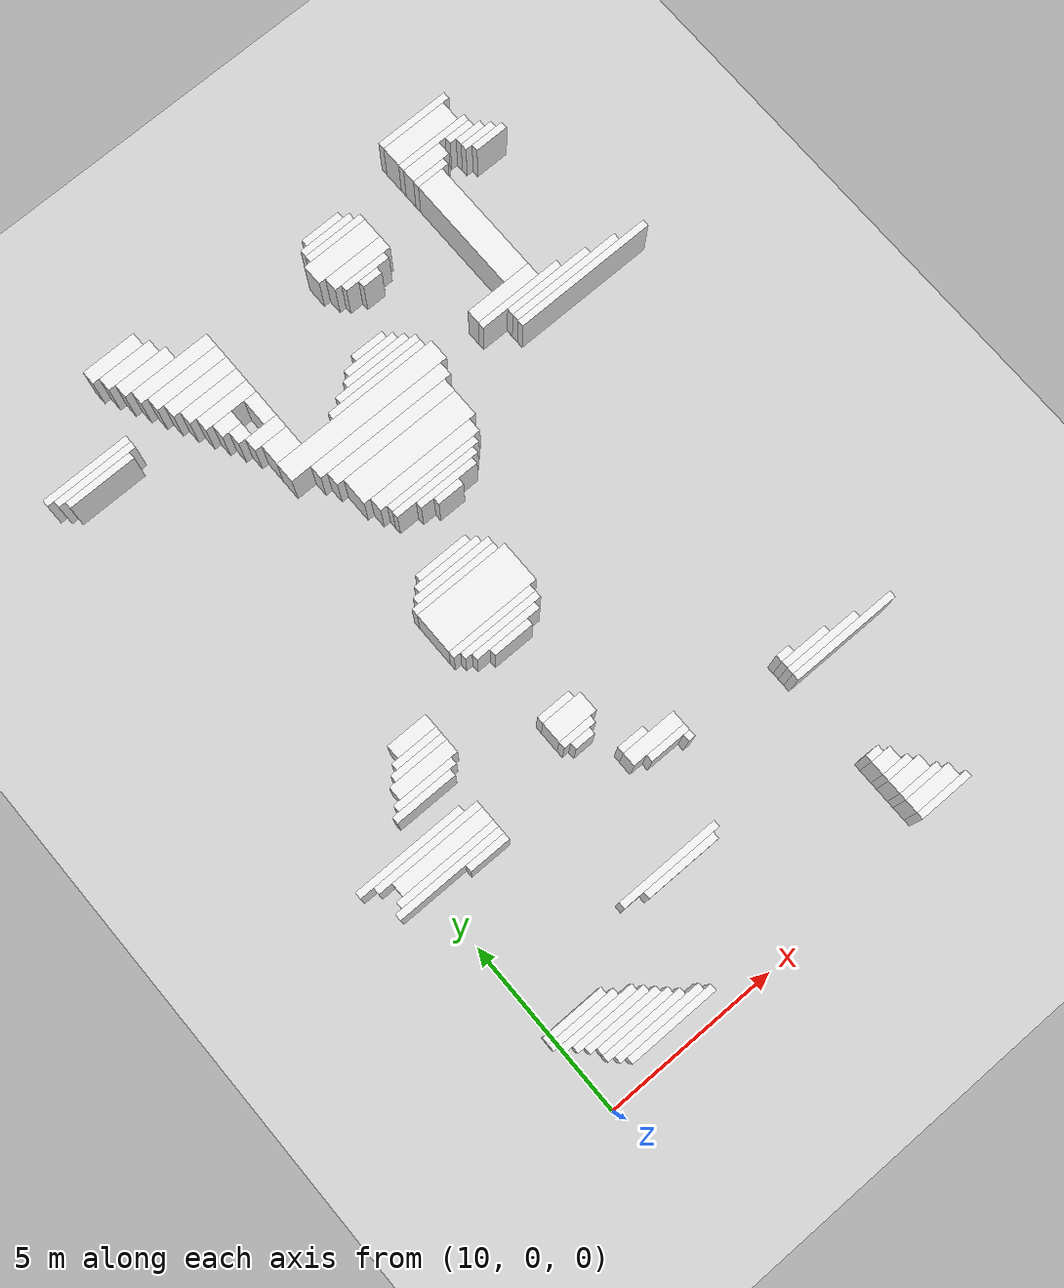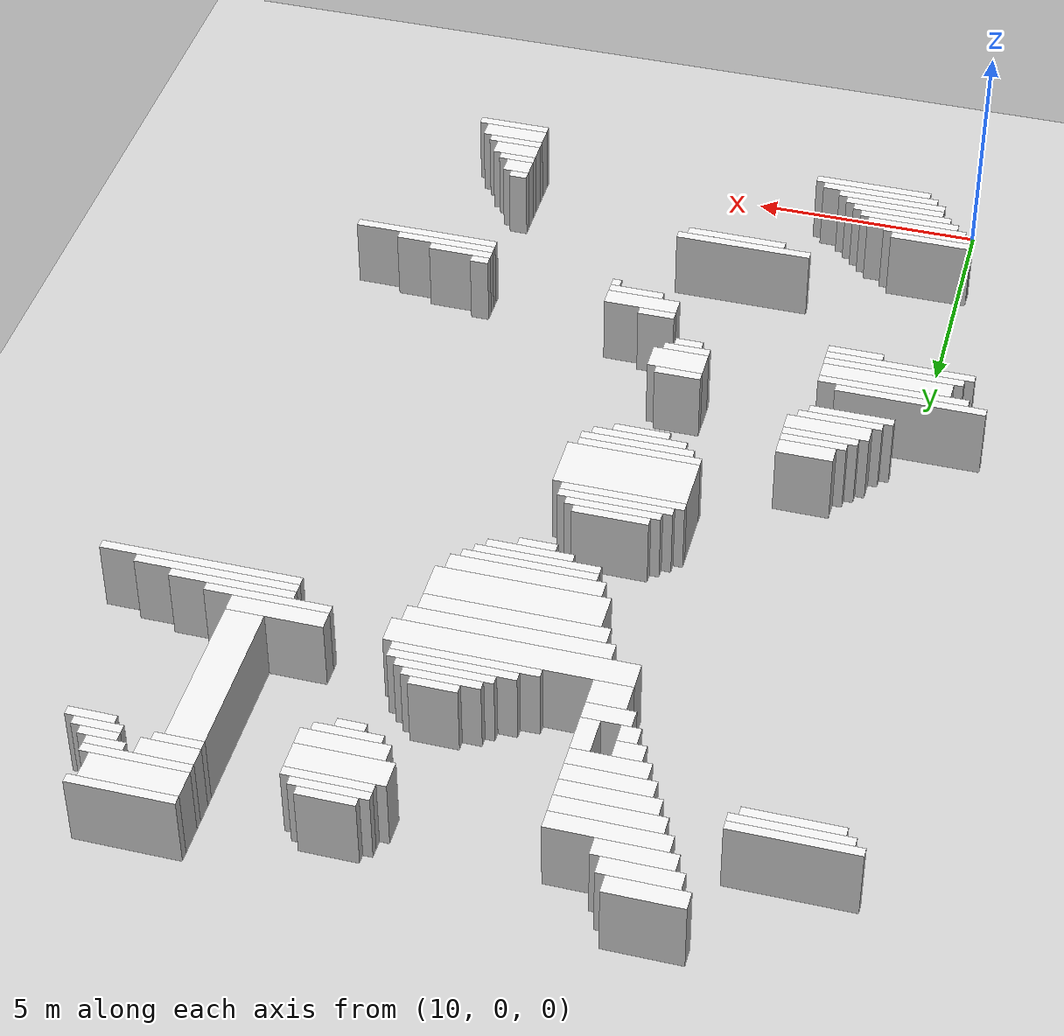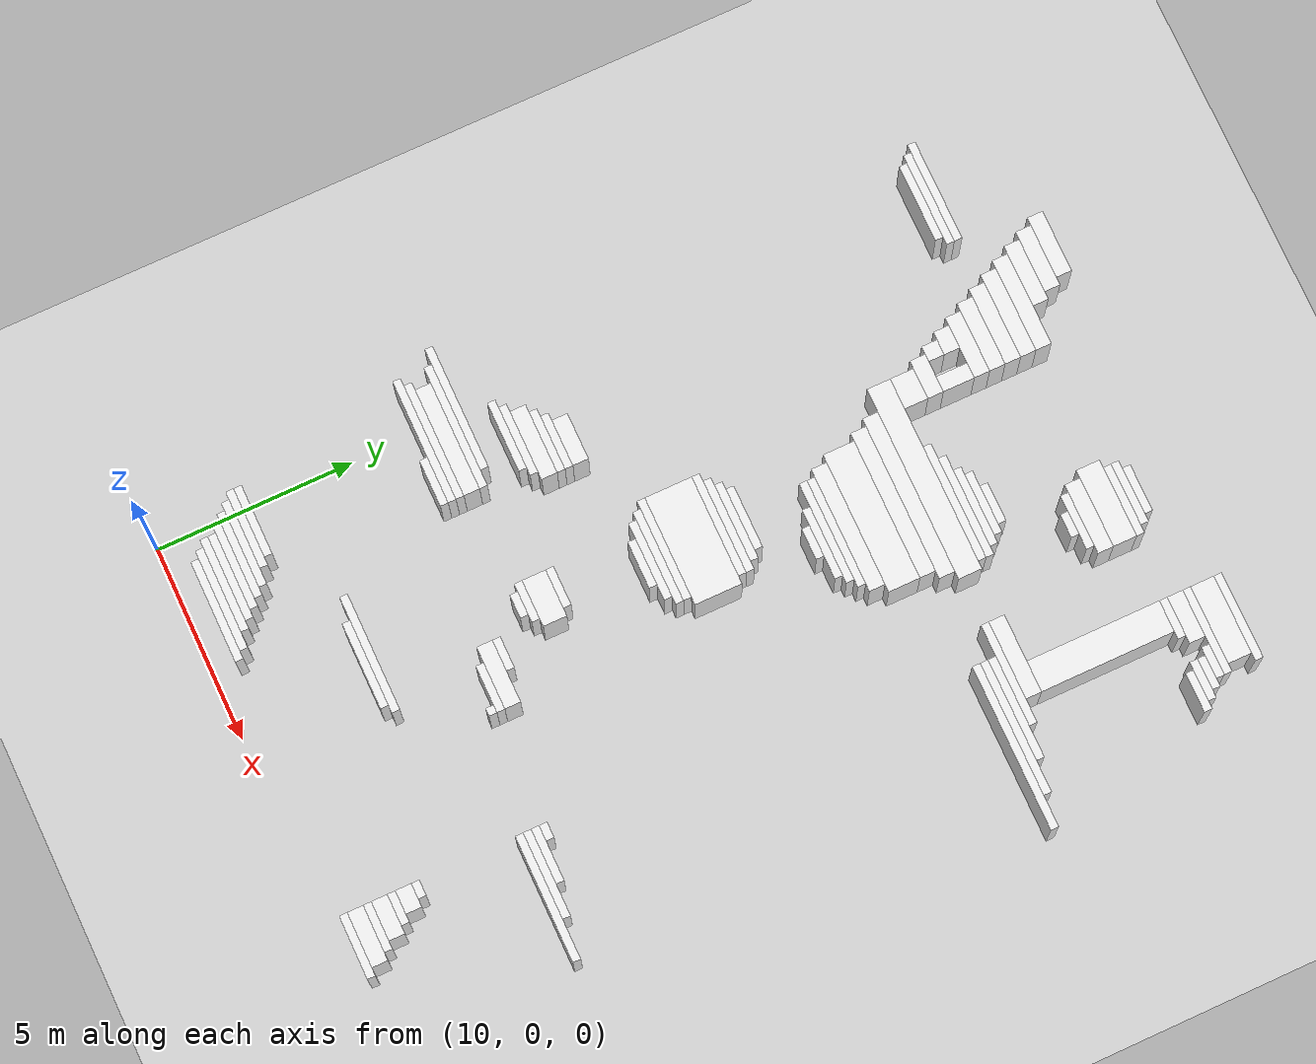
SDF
<sdf version="1.7">
 <world name="default">
  <model name="ground_plane">
   <static>1</static>
   <link name="link">
    <collision name="collision">
     <geometry><plane><normal>0 0 1</normal><size>120 120</size></plane></geometry>
    </collision>
    <visual name="visual">
     <geometry><plane><normal>0 0 1</normal><size>120 120</size></plane></geometry>
     <material>
      <script><uri>file://media/materials/scripts/gazebo.material</uri><name>Gazebo/Grey</name></script>
     </material>
    </visual>
   </link>
  </model>
  <model name="random_complex_03_model">
   <static>1</static>
   <link name="obs_849">
    <pose>22.3000 22.1000 0.8000 0 0 0</pose>
    <collision name="obs_849_col"><geometry><box><size>2.2000 0.2000 1.6000</size></box></geometry></collision>
    <visual name="obs_849_vis">
     <geometry><box><size>2.2000 0.2000 1.6000</size></box></geometry>
     <material>
      <script><uri>file://media/materials/scripts/gazebo.material</uri><name>Gazebo/White</name></script>
     </material>
    </visual>
   </link>
   <link name="obs_854">
    <pose>12.4000 22.0000 0.8000 0 0 0</pose>
    <collision name="obs_854_col"><geometry><box><size>1.6000 0.4000 1.6000</size></box></geometry></collision>
    <visual name="obs_854_vis">
     <geometry><box><size>1.6000 0.4000 1.6000</size></box></geometry>
     <material>
      <script><uri>file://media/materials/scripts/gazebo.material</uri><name>Gazebo/White</name></script>
     </material>
    </visual>
   </link>
   <link name="obs_869">
    <pose>22.2000 21.7000 0.8000 0 0 0</pose>
    <collision name="obs_869_col"><geometry><box><size>2.0000 0.6000 1.6000</size></box></geometry></collision>
    <visual name="obs_869_vis">
     <geometry><box><size>2.0000 0.6000 1.6000</size></box></geometry>
     <material>
      <script><uri>file://media/materials/scripts/gazebo.material</uri><name>Gazebo/White</name></script>
     </material>
    </visual>
   </link>
   <link name="obs_871">
    <pose>12.6000 21.6000 0.8000 0 0 0</pose>
    <collision name="obs_871_col"><geometry><box><size>1.6000 0.4000 1.6000</size></box></geometry></collision>
    <visual name="obs_871_vis">
     <geometry><box><size>1.6000 0.4000 1.6000</size></box></geometry>
     <material>
      <script><uri>file://media/materials/scripts/gazebo.material</uri><name>Gazebo/White</name></script>
     </material>
    </visual>
   </link>
   <link name="obs_883">
    <pose>18.6000 21.3000 0.8000 0 0 0</pose>
    <collision name="obs_883_col"><geometry><box><size>1.2000 0.2000 1.6000</size></box></geometry></collision>
    <visual name="obs_883_vis">
     <geometry><box><size>1.2000 0.2000 1.6000</size></box></geometry>
     <material>
      <script><uri>file://media/materials/scripts/gazebo.material</uri><name>Gazebo/White</name></script>
     </material>
    </visual>
   </link>
   <link name="obs_884">
    <pose>22.3000 21.3000 0.8000 0 0 0</pose>
    <collision name="obs_884_col"><geometry><box><size>2.2000 0.2000 1.6000</size></box></geometry></collision>
    <visual name="obs_884_vis">
     <geometry><box><size>2.2000 0.2000 1.6000</size></box></geometry>
     <material>
      <script><uri>file://media/materials/scripts/gazebo.material</uri><name>Gazebo/White</name></script>
     </material>
    </visual>
   </link>
   <link name="obs_890">
    <pose>12.8000 21.2000 0.8000 0 0 0</pose>
    <collision name="obs_890_col"><geometry><box><size>1.6000 0.4000 1.6000</size></box></geometry></collision>
    <visual name="obs_890_vis">
     <geometry><box><size>1.6000 0.4000 1.6000</size></box></geometry>
     <material>
      <script><uri>file://media/materials/scripts/gazebo.material</uri><name>Gazebo/White</name></script>
     </material>
    </visual>
   </link>
   <link name="obs_893">
    <pose>18.6000 21.1000 0.8000 0 0 0</pose>
    <collision name="obs_893_col"><geometry><box><size>1.6000 0.2000 1.6000</size></box></geometry></collision>
    <visual name="obs_893_vis">
     <geometry><box><size>1.6000 0.2000 1.6000</size></box></geometry>
     <material>
      <script><uri>file://media/materials/scripts/gazebo.material</uri><name>Gazebo/White</name></script>
     </material>
    </visual>
   </link>
   <link name="obs_894">
    <pose>23.0000 21.1000 0.8000 0 0 0</pose>
    <collision name="obs_894_col"><geometry><box><size>0.8000 0.2000 1.6000</size></box></geometry></collision>
    <visual name="obs_894_vis">
     <geometry><box><size>0.8000 0.2000 1.6000</size></box></geometry>
     <material>
      <script><uri>file://media/materials/scripts/gazebo.material</uri><name>Gazebo/White</name></script>
     </material>
    </visual>
   </link>
   <link name="obs_900">
    <pose>21.8000 21.0000 0.8000 0 0 0</pose>
    <collision name="obs_900_col"><geometry><box><size>1.2000 0.4000 1.6000</size></box></geometry></collision>
    <visual name="obs_900_vis">
     <geometry><box><size>1.2000 0.4000 1.6000</size></box></geometry>
     <material>
      <script><uri>file://media/materials/scripts/gazebo.material</uri><name>Gazebo/White</name></script>
     </material>
    </visual>
   </link>
   <link name="obs_905">
    <pose>18.7000 20.9000 0.8000 0 0 0</pose>
    <collision name="obs_905_col"><geometry><box><size>1.8000 0.2000 1.6000</size></box></geometry></collision>
    <visual name="obs_905_vis">
     <geometry><box><size>1.8000 0.2000 1.6000</size></box></geometry>
     <material>
      <script><uri>file://media/materials/scripts/gazebo.material</uri><name>Gazebo/White</name></script>
     </material>
    </visual>
   </link>
   <link name="obs_906">
    <pose>23.2000 20.9000 0.8000 0 0 0</pose>
    <collision name="obs_906_col"><geometry><box><size>0.8000 0.2000 1.6000</size></box></geometry></collision>
    <visual name="obs_906_vis">
     <geometry><box><size>0.8000 0.2000 1.6000</size></box></geometry>
     <material>
      <script><uri>file://media/materials/scripts/gazebo.material</uri><name>Gazebo/White</name></script>
     </material>
    </visual>
   </link>
   <link name="obs_910">
    <pose>13.4000 20.8000 0.8000 0 0 0</pose>
    <collision name="obs_910_col"><geometry><box><size>2.4000 0.4000 1.6000</size></box></geometry></collision>
    <visual name="obs_910_vis">
     <geometry><box><size>2.4000 0.4000 1.6000</size></box></geometry>
     <material>
      <script><uri>file://media/materials/scripts/gazebo.material</uri><name>Gazebo/White</name></script>
     </material>
    </visual>
   </link>
   <link name="obs_916">
    <pose>21.7000 20.7000 0.8000 0 0 0</pose>
    <collision name="obs_916_col"><geometry><box><size>1.0000 0.2000 1.6000</size></box></geometry></collision>
    <visual name="obs_916_vis">
     <geometry><box><size>1.0000 0.2000 1.6000</size></box></geometry>
     <material>
      <script><uri>file://media/materials/scripts/gazebo.material</uri><name>Gazebo/White</name></script>
     </material>
    </visual>
   </link>
   <link name="obs_917">
    <pose>23.3000 20.7000 0.8000 0 0 0</pose>
    <collision name="obs_917_col"><geometry><box><size>1.0000 0.2000 1.6000</size></box></geometry></collision>
    <visual name="obs_917_vis">
     <geometry><box><size>1.0000 0.2000 1.6000</size></box></geometry>
     <material>
      <script><uri>file://media/materials/scripts/gazebo.material</uri><name>Gazebo/White</name></script>
     </material>
    </visual>
   </link>
   <link name="obs_928">
    <pose>23.5000 20.5000 0.8000 0 0 0</pose>
    <collision name="obs_928_col"><geometry><box><size>1.0000 0.2000 1.6000</size></box></geometry></collision>
    <visual name="obs_928_vis">
     <geometry><box><size>1.0000 0.2000 1.6000</size></box></geometry>
     <material>
      <script><uri>file://media/materials/scripts/gazebo.material</uri><name>Gazebo/White</name></script>
     </material>
    </visual>
   </link>
   <link name="obs_932">
    <pose>18.6000 20.5000 0.8000 0 0 0</pose>
    <collision name="obs_932_col"><geometry><box><size>2.0000 0.6000 1.6000</size></box></geometry></collision>
    <visual name="obs_932_vis">
     <geometry><box><size>2.0000 0.6000 1.6000</size></box></geometry>
     <material>
      <script><uri>file://media/materials/scripts/gazebo.material</uri><name>Gazebo/White</name></script>
     </material>
    </visual>
   </link>
   <link name="obs_933">
    <pose>13.5000 20.4000 0.8000 0 0 0</pose>
    <collision name="obs_933_col"><geometry><box><size>2.2000 0.4000 1.6000</size></box></geometry></collision>
    <visual name="obs_933_vis">
     <geometry><box><size>2.2000 0.4000 1.6000</size></box></geometry>
     <material>
      <script><uri>file://media/materials/scripts/gazebo.material</uri><name>Gazebo/White</name></script>
     </material>
    </visual>
   </link>
   <link name="obs_948">
    <pose>10.1000 20.1000 0.8000 0 0 0</pose>
    <collision name="obs_948_col"><geometry><box><size>2.6000 0.2000 1.6000</size></box></geometry></collision>
    <visual name="obs_948_vis">
     <geometry><box><size>2.6000 0.2000 1.6000</size></box></geometry>
     <material>
      <script><uri>file://media/materials/scripts/gazebo.material</uri><name>Gazebo/White</name></script>
     </material>
    </visual>
   </link>
   <link name="obs_954">
    <pose>13.6000 20.0000 0.8000 0 0 0</pose>
    <collision name="obs_954_col"><geometry><box><size>2.0000 0.4000 1.6000</size></box></geometry></collision>
    <visual name="obs_954_vis">
     <geometry><box><size>2.0000 0.4000 1.6000</size></box></geometry>
     <material>
      <script><uri>file://media/materials/scripts/gazebo.material</uri><name>Gazebo/White</name></script>
     </material>
    </visual>
   </link>
   <link name="obs_955">
    <pose>18.7000 20.0000 0.8000 0 0 0</pose>
    <collision name="obs_955_col"><geometry><box><size>1.8000 0.4000 1.6000</size></box></geometry></collision>
    <visual name="obs_955_vis">
     <geometry><box><size>1.8000 0.4000 1.6000</size></box></geometry>
     <material>
      <script><uri>file://media/materials/scripts/gazebo.material</uri><name>Gazebo/White</name></script>
     </material>
    </visual>
   </link>
   <link name="obs_960">
    <pose>10.2000 19.9000 0.8000 0 0 0</pose>
    <collision name="obs_960_col"><geometry><box><size>2.4000 0.2000 1.6000</size></box></geometry></collision>
    <visual name="obs_960_vis">
     <geometry><box><size>2.4000 0.2000 1.6000</size></box></geometry>
     <material>
      <script><uri>file://media/materials/scripts/gazebo.material</uri><name>Gazebo/White</name></script>
     </material>
    </visual>
   </link>
   <link name="obs_971">
    <pose>10.2000 19.7000 0.8000 0 0 0</pose>
    <collision name="obs_971_col"><geometry><box><size>2.0000 0.2000 1.6000</size></box></geometry></collision>
    <visual name="obs_971_vis">
     <geometry><box><size>2.0000 0.2000 1.6000</size></box></geometry>
     <material>
      <script><uri>file://media/materials/scripts/gazebo.material</uri><name>Gazebo/White</name></script>
     </material>
    </visual>
   </link>
   <link name="obs_972">
    <pose>18.7000 19.7000 0.8000 0 0 0</pose>
    <collision name="obs_972_col"><geometry><box><size>1.4000 0.2000 1.6000</size></box></geometry></collision>
    <visual name="obs_972_vis">
     <geometry><box><size>1.4000 0.2000 1.6000</size></box></geometry>
     <material>
      <script><uri>file://media/materials/scripts/gazebo.material</uri><name>Gazebo/White</name></script>
     </material>
    </visual>
   </link>
   <link name="obs_978">
    <pose>13.7000 19.6000 0.8000 0 0 0</pose>
    <collision name="obs_978_col"><geometry><box><size>1.8000 0.4000 1.6000</size></box></geometry></collision>
    <visual name="obs_978_vis">
     <geometry><box><size>1.8000 0.4000 1.6000</size></box></geometry>
     <material>
      <script><uri>file://media/materials/scripts/gazebo.material</uri><name>Gazebo/White</name></script>
     </material>
    </visual>
   </link>
   <link name="obs_983">
    <pose>18.7000 19.5000 0.8000 0 0 0</pose>
    <collision name="obs_983_col"><geometry><box><size>0.6000 0.2000 1.6000</size></box></geometry></collision>
    <visual name="obs_983_vis">
     <geometry><box><size>0.6000 0.2000 1.6000</size></box></geometry>
     <material>
      <script><uri>file://media/materials/scripts/gazebo.material</uri><name>Gazebo/White</name></script>
     </material>
    </visual>
   </link>
   <link name="obs_999">
    <pose>13.8000 19.2000 0.8000 0 0 0</pose>
    <collision name="obs_999_col"><geometry><box><size>1.6000 0.4000 1.6000</size></box></geometry></collision>
    <visual name="obs_999_vis">
     <geometry><box><size>1.6000 0.4000 1.6000</size></box></geometry>
     <material>
      <script><uri>file://media/materials/scripts/gazebo.material</uri><name>Gazebo/White</name></script>
     </material>
    </visual>
   </link>
   <link name="obs_1018">
    <pose>13.5000 18.8000 0.8000 0 0 0</pose>
    <collision name="obs_1018_col"><geometry><box><size>0.6000 0.4000 1.6000</size></box></geometry></collision>
    <visual name="obs_1018_vis">
     <geometry><box><size>0.6000 0.4000 1.6000</size></box></geometry>
     <material>
      <script><uri>file://media/materials/scripts/gazebo.material</uri><name>Gazebo/White</name></script>
     </material>
    </visual>
   </link>
   <link name="obs_1035">
    <pose>14.4000 18.6000 0.8000 0 0 0</pose>
    <collision name="obs_1035_col"><geometry><box><size>0.4000 0.8000 1.6000</size></box></geometry></collision>
    <visual name="obs_1035_vis">
     <geometry><box><size>0.4000 0.8000 1.6000</size></box></geometry>
     <material>
      <script><uri>file://media/materials/scripts/gazebo.material</uri><name>Gazebo/White</name></script>
     </material>
    </visual>
   </link>
   <link name="obs_1037">
    <pose>13.6000 18.4000 0.8000 0 0 0</pose>
    <collision name="obs_1037_col"><geometry><box><size>0.4000 0.4000 1.6000</size></box></geometry></collision>
    <visual name="obs_1037_vis">
     <geometry><box><size>0.4000 0.4000 1.6000</size></box></geometry>
     <material>
      <script><uri>file://media/materials/scripts/gazebo.material</uri><name>Gazebo/White</name></script>
     </material>
    </visual>
   </link>
   <link name="obs_1048">
    <pose>17.5000 18.1000 0.8000 0 0 0</pose>
    <collision name="obs_1048_col"><geometry><box><size>1.0000 0.2000 1.6000</size></box></geometry></collision>
    <visual name="obs_1048_vis">
     <geometry><box><size>1.0000 0.2000 1.6000</size></box></geometry>
     <material>
      <script><uri>file://media/materials/scripts/gazebo.material</uri><name>Gazebo/White</name></script>
     </material>
    </visual>
   </link>
   <link name="obs_1057">
    <pose>14.1000 18.0000 0.8000 0 0 0</pose>
    <collision name="obs_1057_col"><geometry><box><size>1.0000 0.4000 1.6000</size></box></geometry></collision>
    <visual name="obs_1057_vis">
     <geometry><box><size>1.0000 0.4000 1.6000</size></box></geometry>
     <material>
      <script><uri>file://media/materials/scripts/gazebo.material</uri><name>Gazebo/White</name></script>
     </material>
    </visual>
   </link>
   <link name="obs_1059">
    <pose>17.4000 17.9000 0.8000 0 0 0</pose>
    <collision name="obs_1059_col"><geometry><box><size>1.6000 0.2000 1.6000</size></box></geometry></collision>
    <visual name="obs_1059_vis">
     <geometry><box><size>1.6000 0.2000 1.6000</size></box></geometry>
     <material>
      <script><uri>file://media/materials/scripts/gazebo.material</uri><name>Gazebo/White</name></script>
     </material>
    </visual>
   </link>
   <link name="obs_1068">
    <pose>17.4000 17.7000 0.8000 0 0 0</pose>
    <collision name="obs_1068_col"><geometry><box><size>2.0000 0.2000 1.6000</size></box></geometry></collision>
    <visual name="obs_1068_vis">
     <geometry><box><size>2.0000 0.2000 1.6000</size></box></geometry>
     <material>
      <script><uri>file://media/materials/scripts/gazebo.material</uri><name>Gazebo/White</name></script>
     </material>
    </visual>
   </link>
   <link name="obs_1077">
    <pose>17.3000 17.5000 0.8000 0 0 0</pose>
    <collision name="obs_1077_col"><geometry><box><size>2.6000 0.2000 1.6000</size></box></geometry></collision>
    <visual name="obs_1077_vis">
     <geometry><box><size>2.6000 0.2000 1.6000</size></box></geometry>
     <material>
      <script><uri>file://media/materials/scripts/gazebo.material</uri><name>Gazebo/White</name></script>
     </material>
    </visual>
   </link>
   <link name="obs_1081">
    <pose>21.6000 18.9000 0.8000 0 0 0</pose>
    <collision name="obs_1081_col"><geometry><box><size>0.8000 3.4000 1.6000</size></box></geometry></collision>
    <visual name="obs_1081_vis">
     <geometry><box><size>0.8000 3.4000 1.6000</size></box></geometry>
     <material>
      <script><uri>file://media/materials/scripts/gazebo.material</uri><name>Gazebo/White</name></script>
     </material>
    </visual>
   </link>
   <link name="obs_1082">
    <pose>14.2000 17.5000 0.8000 0 0 0</pose>
    <collision name="obs_1082_col"><geometry><box><size>0.8000 0.6000 1.6000</size></box></geometry></collision>
    <visual name="obs_1082_vis">
     <geometry><box><size>0.8000 0.6000 1.6000</size></box></geometry>
     <material>
      <script><uri>file://media/materials/scripts/gazebo.material</uri><name>Gazebo/White</name></script>
     </material>
    </visual>
   </link>
   <link name="obs_1085">
    <pose>17.1000 17.3000 0.8000 0 0 0</pose>
    <collision name="obs_1085_col"><geometry><box><size>3.0000 0.2000 1.6000</size></box></geometry></collision>
    <visual name="obs_1085_vis">
     <geometry><box><size>3.0000 0.2000 1.6000</size></box></geometry>
     <material>
      <script><uri>file://media/materials/scripts/gazebo.material</uri><name>Gazebo/White</name></script>
     </material>
    </visual>
   </link>
   <link name="obs_1097">
    <pose>21.0000 17.0000 0.8000 0 0 0</pose>
    <collision name="obs_1097_col"><geometry><box><size>2.0000 0.4000 1.6000</size></box></geometry></collision>
    <visual name="obs_1097_vis">
     <geometry><box><size>2.0000 0.4000 1.6000</size></box></geometry>
     <material>
      <script><uri>file://media/materials/scripts/gazebo.material</uri><name>Gazebo/White</name></script>
     </material>
    </visual>
   </link>
   <link name="obs_1102">
    <pose>16.3000 16.9000 0.8000 0 0 0</pose>
    <collision name="obs_1102_col"><geometry><box><size>5.0000 0.6000 1.6000</size></box></geometry></collision>
    <visual name="obs_1102_vis">
     <geometry><box><size>5.0000 0.6000 1.6000</size></box></geometry>
     <material>
      <script><uri>file://media/materials/scripts/gazebo.material</uri><name>Gazebo/White</name></script>
     </material>
    </visual>
   </link>
   <link name="obs_1106">
    <pose>21.3000 16.7000 0.8000 0 0 0</pose>
    <collision name="obs_1106_col"><geometry><box><size>2.6000 0.2000 1.6000</size></box></geometry></collision>
    <visual name="obs_1106_vis">
     <geometry><box><size>2.6000 0.2000 1.6000</size></box></geometry>
     <material>
      <script><uri>file://media/materials/scripts/gazebo.material</uri><name>Gazebo/White</name></script>
     </material>
    </visual>
   </link>
   <link name="obs_1113">
    <pose>22.1000 16.5000 0.8000 0 0 0</pose>
    <collision name="obs_1113_col"><geometry><box><size>2.6000 0.2000 1.6000</size></box></geometry></collision>
    <visual name="obs_1113_vis">
     <geometry><box><size>2.6000 0.2000 1.6000</size></box></geometry>
     <material>
      <script><uri>file://media/materials/scripts/gazebo.material</uri><name>Gazebo/White</name></script>
     </material>
    </visual>
   </link>
   <link name="obs_1115">
    <pose>16.5000 16.4000 0.8000 0 0 0</pose>
    <collision name="obs_1115_col"><geometry><box><size>4.2000 0.4000 1.6000</size></box></geometry></collision>
    <visual name="obs_1115_vis">
     <geometry><box><size>4.2000 0.4000 1.6000</size></box></geometry>
     <material>
      <script><uri>file://media/materials/scripts/gazebo.material</uri><name>Gazebo/White</name></script>
     </material>
    </visual>
   </link>
   <link name="obs_1119">
    <pose>22.5000 16.3000 0.8000 0 0 0</pose>
    <collision name="obs_1119_col"><geometry><box><size>3.4000 0.2000 1.6000</size></box></geometry></collision>
    <visual name="obs_1119_vis">
     <geometry><box><size>3.4000 0.2000 1.6000</size></box></geometry>
     <material>
      <script><uri>file://media/materials/scripts/gazebo.material</uri><name>Gazebo/White</name></script>
     </material>
    </visual>
   </link>
   <link name="obs_1125">
    <pose>22.9000 16.1000 0.8000 0 0 0</pose>
    <collision name="obs_1125_col"><geometry><box><size>4.2000 0.2000 1.6000</size></box></geometry></collision>
    <visual name="obs_1125_vis">
     <geometry><box><size>4.2000 0.2000 1.6000</size></box></geometry>
     <material>
      <script><uri>file://media/materials/scripts/gazebo.material</uri><name>Gazebo/White</name></script>
     </material>
    </visual>
   </link>
   <link name="obs_1128">
    <pose>16.5000 16.0000 0.8000 0 0 0</pose>
    <collision name="obs_1128_col"><geometry><box><size>3.8000 0.4000 1.6000</size></box></geometry></collision>
    <visual name="obs_1128_vis">
     <geometry><box><size>3.8000 0.4000 1.6000</size></box></geometry>
     <material>
      <script><uri>file://media/materials/scripts/gazebo.material</uri><name>Gazebo/White</name></script>
     </material>
    </visual>
   </link>
   <link name="obs_1147">
    <pose>16.6000 15.4000 0.8000 0 0 0</pose>
    <collision name="obs_1147_col"><geometry><box><size>3.6000 0.8000 1.6000</size></box></geometry></collision>
    <visual name="obs_1147_vis">
     <geometry><box><size>3.6000 0.8000 1.6000</size></box></geometry>
     <material>
      <script><uri>file://media/materials/scripts/gazebo.material</uri><name>Gazebo/White</name></script>
     </material>
    </visual>
   </link>
   <link name="obs_1157">
    <pose>16.6000 14.8000 0.8000 0 0 0</pose>
    <collision name="obs_1157_col"><geometry><box><size>3.2000 0.4000 1.6000</size></box></geometry></collision>
    <visual name="obs_1157_vis">
     <geometry><box><size>3.2000 0.4000 1.6000</size></box></geometry>
     <material>
      <script><uri>file://media/materials/scripts/gazebo.material</uri><name>Gazebo/White</name></script>
     </material>
    </visual>
   </link>
   <link name="obs_1166">
    <pose>16.6000 14.5000 0.8000 0 0 0</pose>
    <collision name="obs_1166_col"><geometry><box><size>2.8000 0.2000 1.6000</size></box></geometry></collision>
    <visual name="obs_1166_vis">
     <geometry><box><size>2.8000 0.2000 1.6000</size></box></geometry>
     <material>
      <script><uri>file://media/materials/scripts/gazebo.material</uri><name>Gazebo/White</name></script>
     </material>
    </visual>
   </link>
   <link name="obs_1171">
    <pose>16.5000 14.3000 0.8000 0 0 0</pose>
    <collision name="obs_1171_col"><geometry><box><size>2.6000 0.2000 1.6000</size></box></geometry></collision>
    <visual name="obs_1171_vis">
     <geometry><box><size>2.6000 0.2000 1.6000</size></box></geometry>
     <material>
      <script><uri>file://media/materials/scripts/gazebo.material</uri><name>Gazebo/White</name></script>
     </material>
    </visual>
   </link>
   <link name="obs_1175">
    <pose>16.7000 14.1000 0.8000 0 0 0</pose>
    <collision name="obs_1175_col"><geometry><box><size>1.8000 0.2000 1.6000</size></box></geometry></collision>
    <visual name="obs_1175_vis">
     <geometry><box><size>1.8000 0.2000 1.6000</size></box></geometry>
     <material>
      <script><uri>file://media/materials/scripts/gazebo.material</uri><name>Gazebo/White</name></script>
     </material>
    </visual>
   </link>
   <link name="obs_1179">
    <pose>16.6000 13.9000 0.8000 0 0 0</pose>
    <collision name="obs_1179_col"><geometry><box><size>0.8000 0.2000 1.6000</size></box></geometry></collision>
    <visual name="obs_1179_vis">
     <geometry><box><size>0.8000 0.2000 1.6000</size></box></geometry>
     <material>
      <script><uri>file://media/materials/scripts/gazebo.material</uri><name>Gazebo/White</name></script>
     </material>
    </visual>
   </link>
   <link name="obs_1210">
    <pose>15.4000 12.7000 0.8000 0 0 0</pose>
    <collision name="obs_1210_col"><geometry><box><size>1.6000 0.2000 1.6000</size></box></geometry></collision>
    <visual name="obs_1210_vis">
     <geometry><box><size>1.6000 0.2000 1.6000</size></box></geometry>
     <material>
      <script><uri>file://media/materials/scripts/gazebo.material</uri><name>Gazebo/White</name></script>
     </material>
    </visual>
   </link>
   <link name="obs_1216">
    <pose>15.4000 12.5000 0.8000 0 0 0</pose>
    <collision name="obs_1216_col"><geometry><box><size>2.0000 0.2000 1.6000</size></box></geometry></collision>
    <visual name="obs_1216_vis">
     <geometry><box><size>2.0000 0.2000 1.6000</size></box></geometry>
     <material>
      <script><uri>file://media/materials/scripts/gazebo.material</uri><name>Gazebo/White</name></script>
     </material>
    </visual>
   </link>
   <link name="obs_1222">
    <pose>15.4000 12.3000 0.8000 0 0 0</pose>
    <collision name="obs_1222_col"><geometry><box><size>2.4000 0.2000 1.6000</size></box></geometry></collision>
    <visual name="obs_1222_vis">
     <geometry><box><size>2.4000 0.2000 1.6000</size></box></geometry>
     <material>
      <script><uri>file://media/materials/scripts/gazebo.material</uri><name>Gazebo/White</name></script>
     </material>
    </visual>
   </link>
   <link name="obs_1228">
    <pose>15.3000 12.1000 0.8000 0 0 0</pose>
    <collision name="obs_1228_col"><geometry><box><size>2.6000 0.2000 1.6000</size></box></geometry></collision>
    <visual name="obs_1228_vis">
     <geometry><box><size>2.6000 0.2000 1.6000</size></box></geometry>
     <material>
      <script><uri>file://media/materials/scripts/gazebo.material</uri><name>Gazebo/White</name></script>
     </material>
    </visual>
   </link>
   <link name="obs_1257">
    <pose>15.4000 11.4000 0.8000 0 0 0</pose>
    <collision name="obs_1257_col"><geometry><box><size>2.8000 1.2000 1.6000</size></box></geometry></collision>
    <visual name="obs_1257_vis">
     <geometry><box><size>2.8000 1.2000 1.6000</size></box></geometry>
     <material>
      <script><uri>file://media/materials/scripts/gazebo.material</uri><name>Gazebo/White</name></script>
     </material>
    </visual>
   </link>
   <link name="obs_1274">
    <pose>15.3000 10.7000 0.8000 0 0 0</pose>
    <collision name="obs_1274_col"><geometry><box><size>2.6000 0.2000 1.6000</size></box></geometry></collision>
    <visual name="obs_1274_vis">
     <geometry><box><size>2.6000 0.2000 1.6000</size></box></geometry>
     <material>
      <script><uri>file://media/materials/scripts/gazebo.material</uri><name>Gazebo/White</name></script>
     </material>
    </visual>
   </link>
   <link name="obs_1283">
    <pose>15.4000 10.5000 0.8000 0 0 0</pose>
    <collision name="obs_1283_col"><geometry><box><size>2.4000 0.2000 1.6000</size></box></geometry></collision>
    <visual name="obs_1283_vis">
     <geometry><box><size>2.4000 0.2000 1.6000</size></box></geometry>
     <material>
      <script><uri>file://media/materials/scripts/gazebo.material</uri><name>Gazebo/White</name></script>
     </material>
    </visual>
   </link>
   <link name="obs_1294">
    <pose>15.4000 10.3000 0.8000 0 0 0</pose>
    <collision name="obs_1294_col"><geometry><box><size>2.0000 0.2000 1.6000</size></box></geometry></collision>
    <visual name="obs_1294_vis">
     <geometry><box><size>2.0000 0.2000 1.6000</size></box></geometry>
     <material>
      <script><uri>file://media/materials/scripts/gazebo.material</uri><name>Gazebo/White</name></script>
     </material>
    </visual>
   </link>
   <link name="obs_1305">
    <pose>15.4000 10.1000 0.8000 0 0 0</pose>
    <collision name="obs_1305_col"><geometry><box><size>1.2000 0.2000 1.6000</size></box></geometry></collision>
    <visual name="obs_1305_vis">
     <geometry><box><size>1.2000 0.2000 1.6000</size></box></geometry>
     <material>
      <script><uri>file://media/materials/scripts/gazebo.material</uri><name>Gazebo/White</name></script>
     </material>
    </visual>
   </link>
   <link name="obs_1317">
    <pose>12.0000 9.8000 0.8000 0 0 0</pose>
    <collision name="obs_1317_col"><geometry><box><size>1.2000 0.4000 1.6000</size></box></geometry></collision>
    <visual name="obs_1317_vis">
     <geometry><box><size>1.2000 0.4000 1.6000</size></box></geometry>
     <material>
      <script><uri>file://media/materials/scripts/gazebo.material</uri><name>Gazebo/White</name></script>
     </material>
    </visual>
   </link>
   <link name="obs_1332">
    <pose>11.9000 9.5000 0.8000 0 0 0</pose>
    <collision name="obs_1332_col"><geometry><box><size>1.4000 0.2000 1.6000</size></box></geometry></collision>
    <visual name="obs_1332_vis">
     <geometry><box><size>1.4000 0.2000 1.6000</size></box></geometry>
     <material>
      <script><uri>file://media/materials/scripts/gazebo.material</uri><name>Gazebo/White</name></script>
     </material>
    </visual>
   </link>
   <link name="obs_1341">
    <pose>11.8000 9.3000 0.8000 0 0 0</pose>
    <collision name="obs_1341_col"><geometry><box><size>1.6000 0.2000 1.6000</size></box></geometry></collision>
    <visual name="obs_1341_vis">
     <geometry><box><size>1.6000 0.2000 1.6000</size></box></geometry>
     <material>
      <script><uri>file://media/materials/scripts/gazebo.material</uri><name>Gazebo/White</name></script>
     </material>
    </visual>
   </link>
   <link name="obs_1352">
    <pose>11.7000 9.0000 0.8000 0 0 0</pose>
    <collision name="obs_1352_col"><geometry><box><size>1.8000 0.4000 1.6000</size></box></geometry></collision>
    <visual name="obs_1352_vis">
     <geometry><box><size>1.8000 0.4000 1.6000</size></box></geometry>
     <material>
      <script><uri>file://media/materials/scripts/gazebo.material</uri><name>Gazebo/White</name></script>
     </material>
    </visual>
   </link>
   <link name="obs_1363">
    <pose>11.5000 8.7000 0.8000 0 0 0</pose>
    <collision name="obs_1363_col"><geometry><box><size>1.8000 0.2000 1.6000</size></box></geometry></collision>
    <visual name="obs_1363_vis">
     <geometry><box><size>1.8000 0.2000 1.6000</size></box></geometry>
     <material>
      <script><uri>file://media/materials/scripts/gazebo.material</uri><name>Gazebo/White</name></script>
     </material>
    </visual>
   </link>
   <link name="obs_1371">
    <pose>11.3000 8.5000 0.8000 0 0 0</pose>
    <collision name="obs_1371_col"><geometry><box><size>1.8000 0.2000 1.6000</size></box></geometry></collision>
    <visual name="obs_1371_vis">
     <geometry><box><size>1.8000 0.2000 1.6000</size></box></geometry>
     <material>
      <script><uri>file://media/materials/scripts/gazebo.material</uri><name>Gazebo/White</name></script>
     </material>
    </visual>
   </link>
   <link name="obs_1385">
    <pose>15.1000 8.1000 0.8000 0 0 0</pose>
    <collision name="obs_1385_col"><geometry><box><size>1.0000 0.2000 1.6000</size></box></geometry></collision>
    <visual name="obs_1385_vis">
     <geometry><box><size>1.0000 0.2000 1.6000</size></box></geometry>
     <material>
      <script><uri>file://media/materials/scripts/gazebo.material</uri><name>Gazebo/White</name></script>
     </material>
    </visual>
   </link>
   <link name="obs_1395">
    <pose>10.2000 7.7000 0.8000 0 0 0</pose>
    <collision name="obs_1395_col"><geometry><box><size>3.2000 0.2000 1.6000</size></box></geometry></collision>
    <visual name="obs_1395_vis">
     <geometry><box><size>3.2000 0.2000 1.6000</size></box></geometry>
     <material>
      <script><uri>file://media/materials/scripts/gazebo.material</uri><name>Gazebo/White</name></script>
     </material>
    </visual>
   </link>
   <link name="obs_1398">
    <pose>15.2000 7.7000 0.8000 0 0 0</pose>
    <collision name="obs_1398_col"><geometry><box><size>1.2000 0.6000 1.6000</size></box></geometry></collision>
    <visual name="obs_1398_vis">
     <geometry><box><size>1.2000 0.6000 1.6000</size></box></geometry>
     <material>
      <script><uri>file://media/materials/scripts/gazebo.material</uri><name>Gazebo/White</name></script>
     </material>
    </visual>
   </link>
   <link name="obs_1404">
    <pose>10.6000 7.5000 0.8000 0 0 0</pose>
    <collision name="obs_1404_col"><geometry><box><size>3.2000 0.2000 1.6000</size></box></geometry></collision>
    <visual name="obs_1404_vis">
     <geometry><box><size>3.2000 0.2000 1.6000</size></box></geometry>
     <material>
      <script><uri>file://media/materials/scripts/gazebo.material</uri><name>Gazebo/White</name></script>
     </material>
    </visual>
   </link>
   <link name="obs_1413">
    <pose>15.1000 7.3000 0.8000 0 0 0</pose>
    <collision name="obs_1413_col"><geometry><box><size>1.0000 0.2000 1.6000</size></box></geometry></collision>
    <visual name="obs_1413_vis">
     <geometry><box><size>1.0000 0.2000 1.6000</size></box></geometry>
     <material>
      <script><uri>file://media/materials/scripts/gazebo.material</uri><name>Gazebo/White</name></script>
     </material>
    </visual>
   </link>
   <link name="obs_1415">
    <pose>10.8000 7.2000 0.8000 0 0 0</pose>
    <collision name="obs_1415_col"><geometry><box><size>2.8000 0.4000 1.6000</size></box></geometry></collision>
    <visual name="obs_1415_vis">
     <geometry><box><size>2.8000 0.4000 1.6000</size></box></geometry>
     <material>
      <script><uri>file://media/materials/scripts/gazebo.material</uri><name>Gazebo/White</name></script>
     </material>
    </visual>
   </link>
   <link name="obs_1418">
    <pose>15.1000 7.1000 0.8000 0 0 0</pose>
    <collision name="obs_1418_col"><geometry><box><size>0.6000 0.2000 1.6000</size></box></geometry></collision>
    <visual name="obs_1418_vis">
     <geometry><box><size>0.6000 0.2000 1.6000</size></box></geometry>
     <material>
      <script><uri>file://media/materials/scripts/gazebo.material</uri><name>Gazebo/White</name></script>
     </material>
    </visual>
   </link>
   <link name="obs_1425">
    <pose>10.7000 6.9000 0.8000 0 0 0</pose>
    <collision name="obs_1425_col"><geometry><box><size>3.0000 0.2000 1.6000</size></box></geometry></collision>
    <visual name="obs_1425_vis">
     <geometry><box><size>3.0000 0.2000 1.6000</size></box></geometry>
     <material>
      <script><uri>file://media/materials/scripts/gazebo.material</uri><name>Gazebo/White</name></script>
     </material>
    </visual>
   </link>
   <link name="obs_1434">
    <pose>10.6000 6.7000 0.8000 0 0 0</pose>
    <collision name="obs_1434_col"><geometry><box><size>3.2000 0.2000 1.6000</size></box></geometry></collision>
    <visual name="obs_1434_vis">
     <geometry><box><size>3.2000 0.2000 1.6000</size></box></geometry>
     <material>
      <script><uri>file://media/materials/scripts/gazebo.material</uri><name>Gazebo/White</name></script>
     </material>
    </visual>
   </link>
   <link name="obs_1439">
    <pose>11.6000 6.5000 0.8000 0 0 0</pose>
    <collision name="obs_1439_col"><geometry><box><size>1.2000 0.2000 1.6000</size></box></geometry></collision>
    <visual name="obs_1439_vis">
     <geometry><box><size>1.2000 0.2000 1.6000</size></box></geometry>
     <material>
      <script><uri>file://media/materials/scripts/gazebo.material</uri><name>Gazebo/White</name></script>
     </material>
    </visual>
   </link>
   <link name="obs_1447">
    <pose>16.0000 6.3000 0.8000 0 0 0</pose>
    <collision name="obs_1447_col"><geometry><box><size>0.8000 0.2000 1.6000</size></box></geometry></collision>
    <visual name="obs_1447_vis">
     <geometry><box><size>0.8000 0.2000 1.6000</size></box></geometry>
     <material>
      <script><uri>file://media/materials/scripts/gazebo.material</uri><name>Gazebo/White</name></script>
     </material>
    </visual>
   </link>
   <link name="obs_1455">
    <pose>16.4000 6.0000 0.8000 0 0 0</pose>
    <collision name="obs_1455_col"><geometry><box><size>1.6000 0.4000 1.6000</size></box></geometry></collision>
    <visual name="obs_1455_vis">
     <geometry><box><size>1.6000 0.4000 1.6000</size></box></geometry>
     <material>
      <script><uri>file://media/materials/scripts/gazebo.material</uri><name>Gazebo/White</name></script>
     </material>
    </visual>
   </link>
   <link name="obs_1465">
    <pose>16.6000 5.7000 0.8000 0 0 0</pose>
    <collision name="obs_1465_col"><geometry><box><size>1.2000 0.2000 1.6000</size></box></geometry></collision>
    <visual name="obs_1465_vis">
     <geometry><box><size>1.2000 0.2000 1.6000</size></box></geometry>
     <material>
      <script><uri>file://media/materials/scripts/gazebo.material</uri><name>Gazebo/White</name></script>
     </material>
    </visual>
   </link>
   <link name="obs_1475">
    <pose>17.1000 5.5000 0.8000 0 0 0</pose>
    <collision name="obs_1475_col"><geometry><box><size>0.2000 0.2000 1.6000</size></box></geometry></collision>
    <visual name="obs_1475_vis">
     <geometry><box><size>0.2000 0.2000 1.6000</size></box></geometry>
     <material>
      <script><uri>file://media/materials/scripts/gazebo.material</uri><name>Gazebo/White</name></script>
     </material>
    </visual>
   </link>
   <link name="obs_1476">
    <pose>20.2000 5.5000 0.8000 0 0 0</pose>
    <collision name="obs_1476_col"><geometry><box><size>0.4000 0.2000 1.6000</size></box></geometry></collision>
    <visual name="obs_1476_vis">
     <geometry><box><size>0.4000 0.2000 1.6000</size></box></geometry>
     <material>
      <script><uri>file://media/materials/scripts/gazebo.material</uri><name>Gazebo/White</name></script>
     </material>
    </visual>
   </link>
   <link name="obs_1485">
    <pose>20.7000 5.3000 0.8000 0 0 0</pose>
    <collision name="obs_1485_col"><geometry><box><size>1.4000 0.2000 1.6000</size></box></geometry></collision>
    <visual name="obs_1485_vis">
     <geometry><box><size>1.4000 0.2000 1.6000</size></box></geometry>
     <material>
      <script><uri>file://media/materials/scripts/gazebo.material</uri><name>Gazebo/White</name></script>
     </material>
    </visual>
   </link>
   <link name="obs_1491">
    <pose>21.1000 5.1000 0.8000 0 0 0</pose>
    <collision name="obs_1491_col"><geometry><box><size>2.2000 0.2000 1.6000</size></box></geometry></collision>
    <visual name="obs_1491_vis">
     <geometry><box><size>2.2000 0.2000 1.6000</size></box></geometry>
     <material>
      <script><uri>file://media/materials/scripts/gazebo.material</uri><name>Gazebo/White</name></script>
     </material>
    </visual>
   </link>
   <link name="obs_1500">
    <pose>21.6000 4.9000 0.8000 0 0 0</pose>
    <collision name="obs_1500_col"><geometry><box><size>3.2000 0.2000 1.6000</size></box></geometry></collision>
    <visual name="obs_1500_vis">
     <geometry><box><size>3.2000 0.2000 1.6000</size></box></geometry>
     <material>
      <script><uri>file://media/materials/scripts/gazebo.material</uri><name>Gazebo/White</name></script>
     </material>
    </visual>
   </link>
   <link name="obs_1532">
    <pose>14.7000 3.5000 0.8000 0 0 0</pose>
    <collision name="obs_1532_col"><geometry><box><size>3.0000 0.2000 1.6000</size></box></geometry></collision>
    <visual name="obs_1532_vis">
     <geometry><box><size>3.0000 0.2000 1.6000</size></box></geometry>
     <material>
      <script><uri>file://media/materials/scripts/gazebo.material</uri><name>Gazebo/White</name></script>
     </material>
    </visual>
   </link>
   <link name="obs_1540">
    <pose>14.9000 3.3000 0.8000 0 0 0</pose>
    <collision name="obs_1540_col"><geometry><box><size>2.2000 0.2000 1.6000</size></box></geometry></collision>
    <visual name="obs_1540_vis">
     <geometry><box><size>2.2000 0.2000 1.6000</size></box></geometry>
     <material>
      <script><uri>file://media/materials/scripts/gazebo.material</uri><name>Gazebo/White</name></script>
     </material>
    </visual>
   </link>
   <link name="obs_1551">
    <pose>10.7000 2.3000 0.8000 0 0 0</pose>
    <collision name="obs_1551_col"><geometry><box><size>1.8000 0.2000 1.6000</size></box></geometry></collision>
    <visual name="obs_1551_vis">
     <geometry><box><size>1.8000 0.2000 1.6000</size></box></geometry>
     <material>
      <script><uri>file://media/materials/scripts/gazebo.material</uri><name>Gazebo/White</name></script>
     </material>
    </visual>
   </link>
   <link name="obs_1552">
    <pose>20.2000 2.3000 0.8000 0 0 0</pose>
    <collision name="obs_1552_col"><geometry><box><size>0.4000 0.2000 1.6000</size></box></geometry></collision>
    <visual name="obs_1552_vis">
     <geometry><box><size>0.4000 0.2000 1.6000</size></box></geometry>
     <material>
      <script><uri>file://media/materials/scripts/gazebo.material</uri><name>Gazebo/White</name></script>
     </material>
    </visual>
   </link>
   <link name="obs_1555">
    <pose>10.8000 2.1000 0.8000 0 0 0</pose>
    <collision name="obs_1555_col"><geometry><box><size>2.0000 0.2000 1.6000</size></box></geometry></collision>
    <visual name="obs_1555_vis">
     <geometry><box><size>2.0000 0.2000 1.6000</size></box></geometry>
     <material>
      <script><uri>file://media/materials/scripts/gazebo.material</uri><name>Gazebo/White</name></script>
     </material>
    </visual>
   </link>
   <link name="obs_1558">
    <pose>20.3000 2.0000 0.8000 0 0 0</pose>
    <collision name="obs_1558_col"><geometry><box><size>0.6000 0.4000 1.6000</size></box></geometry></collision>
    <visual name="obs_1558_vis">
     <geometry><box><size>0.6000 0.4000 1.6000</size></box></geometry>
     <material>
      <script><uri>file://media/materials/scripts/gazebo.material</uri><name>Gazebo/White</name></script>
     </material>
    </visual>
   </link>
   <link name="obs_1561">
    <pose>11.1000 1.9000 0.8000 0 0 0</pose>
    <collision name="obs_1561_col"><geometry><box><size>2.2000 0.2000 1.6000</size></box></geometry></collision>
    <visual name="obs_1561_vis">
     <geometry><box><size>2.2000 0.2000 1.6000</size></box></geometry>
     <material>
      <script><uri>file://media/materials/scripts/gazebo.material</uri><name>Gazebo/White</name></script>
     </material>
    </visual>
   </link>
   <link name="obs_1566">
    <pose>11.3000 1.7000 0.8000 0 0 0</pose>
    <collision name="obs_1566_col"><geometry><box><size>2.2000 0.2000 1.6000</size></box></geometry></collision>
    <visual name="obs_1566_vis">
     <geometry><box><size>2.2000 0.2000 1.6000</size></box></geometry>
     <material>
      <script><uri>file://media/materials/scripts/gazebo.material</uri><name>Gazebo/White</name></script>
     </material>
    </visual>
   </link>
   <link name="obs_1567">
    <pose>20.4000 1.7000 0.8000 0 0 0</pose>
    <collision name="obs_1567_col"><geometry><box><size>0.8000 0.2000 1.6000</size></box></geometry></collision>
    <visual name="obs_1567_vis">
     <geometry><box><size>0.8000 0.2000 1.6000</size></box></geometry>
     <material>
      <script><uri>file://media/materials/scripts/gazebo.material</uri><name>Gazebo/White</name></script>
     </material>
    </visual>
   </link>
   <link name="obs_1572">
    <pose>11.5000 1.5000 0.8000 0 0 0</pose>
    <collision name="obs_1572_col"><geometry><box><size>2.2000 0.2000 1.6000</size></box></geometry></collision>
    <visual name="obs_1572_vis">
     <geometry><box><size>2.2000 0.2000 1.6000</size></box></geometry>
     <material>
      <script><uri>file://media/materials/scripts/gazebo.material</uri><name>Gazebo/White</name></script>
     </material>
    </visual>
   </link>
   <link name="obs_1575">
    <pose>20.5000 1.4000 0.8000 0 0 0</pose>
    <collision name="obs_1575_col"><geometry><box><size>1.0000 0.4000 1.6000</size></box></geometry></collision>
    <visual name="obs_1575_vis">
     <geometry><box><size>1.0000 0.4000 1.6000</size></box></geometry>
     <material>
      <script><uri>file://media/materials/scripts/gazebo.material</uri><name>Gazebo/White</name></script>
     </material>
    </visual>
   </link>
   <link name="obs_1579">
    <pose>11.7000 1.3000 0.8000 0 0 0</pose>
    <collision name="obs_1579_col"><geometry><box><size>2.2000 0.2000 1.6000</size></box></geometry></collision>
    <visual name="obs_1579_vis">
     <geometry><box><size>2.2000 0.2000 1.6000</size></box></geometry>
     <material>
      <script><uri>file://media/materials/scripts/gazebo.material</uri><name>Gazebo/White</name></script>
     </material>
    </visual>
   </link>
   <link name="obs_1584">
    <pose>11.8000 1.1000 0.8000 0 0 0</pose>
    <collision name="obs_1584_col"><geometry><box><size>2.4000 0.2000 1.6000</size></box></geometry></collision>
    <visual name="obs_1584_vis">
     <geometry><box><size>2.4000 0.2000 1.6000</size></box></geometry>
     <material>
      <script><uri>file://media/materials/scripts/gazebo.material</uri><name>Gazebo/White</name></script>
     </material>
    </visual>
   </link>
   <link name="obs_1585">
    <pose>20.6000 1.1000 0.8000 0 0 0</pose>
    <collision name="obs_1585_col"><geometry><box><size>1.2000 0.2000 1.6000</size></box></geometry></collision>
    <visual name="obs_1585_vis">
     <geometry><box><size>1.2000 0.2000 1.6000</size></box></geometry>
     <material>
      <script><uri>file://media/materials/scripts/gazebo.material</uri><name>Gazebo/White</name></script>
     </material>
    </visual>
   </link>
   <link name="obs_1591">
    <pose>12.1000 0.9000 0.8000 0 0 0</pose>
    <collision name="obs_1591_col"><geometry><box><size>2.6000 0.2000 1.6000</size></box></geometry></collision>
    <visual name="obs_1591_vis">
     <geometry><box><size>2.6000 0.2000 1.6000</size></box></geometry>
     <material>
      <script><uri>file://media/materials/scripts/gazebo.material</uri><name>Gazebo/White</name></script>
     </material>
    </visual>
   </link>
   <link name="obs_1595">
    <pose>20.7000 0.8000 0.8000 0 0 0</pose>
    <collision name="obs_1595_col"><geometry><box><size>1.4000 0.4000 1.6000</size></box></geometry></collision>
    <visual name="obs_1595_vis">
     <geometry><box><size>1.4000 0.4000 1.6000</size></box></geometry>
     <material>
      <script><uri>file://media/materials/scripts/gazebo.material</uri><name>Gazebo/White</name></script>
     </material>
    </visual>
   </link>
   <link name="obs_1601">
    <pose>12.3000 0.7000 0.8000 0 0 0</pose>
    <collision name="obs_1601_col"><geometry><box><size>2.6000 0.2000 1.6000</size></box></geometry></collision>
    <visual name="obs_1601_vis">
     <geometry><box><size>2.6000 0.2000 1.6000</size></box></geometry>
     <material>
      <script><uri>file://media/materials/scripts/gazebo.material</uri><name>Gazebo/White</name></script>
     </material>
    </visual>
   </link>
   <link name="obs_1611">
    <pose>20.8000 0.5000 0.8000 0 0 0</pose>
    <collision name="obs_1611_col"><geometry><box><size>1.6000 0.2000 1.6000</size></box></geometry></collision>
    <visual name="obs_1611_vis">
     <geometry><box><size>1.6000 0.2000 1.6000</size></box></geometry>
     <material>
      <script><uri>file://media/materials/scripts/gazebo.material</uri><name>Gazebo/White</name></script>
     </material>
    </visual>
   </link>
  </model>
 </world>
</sdf>
